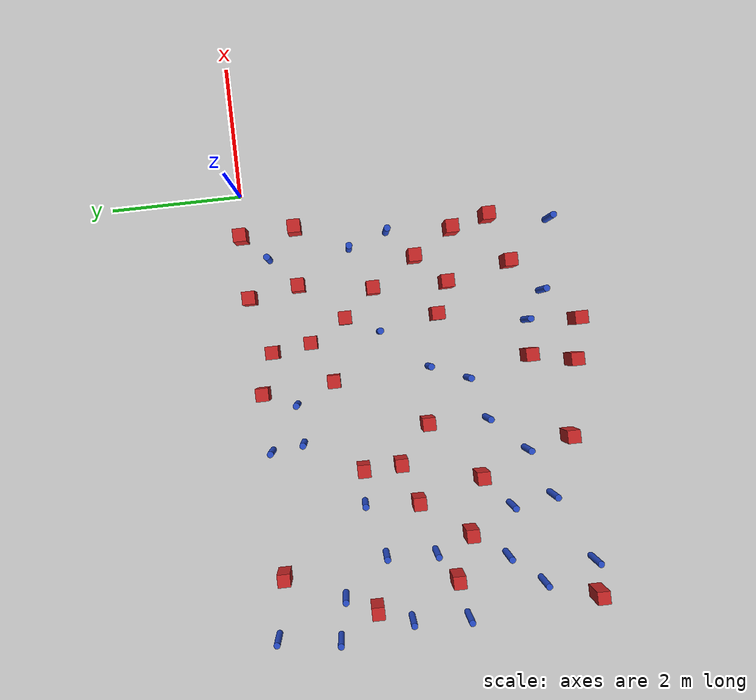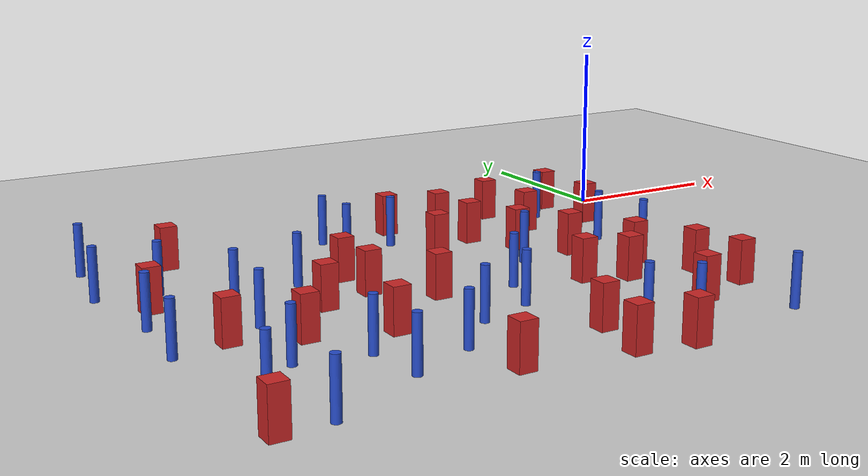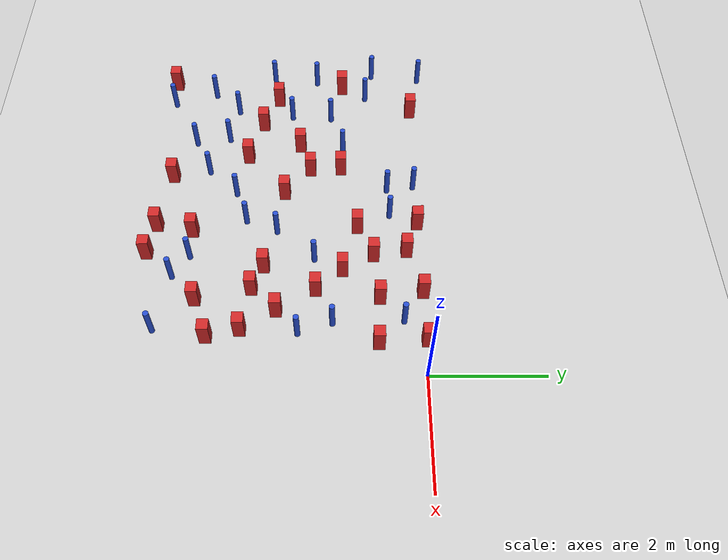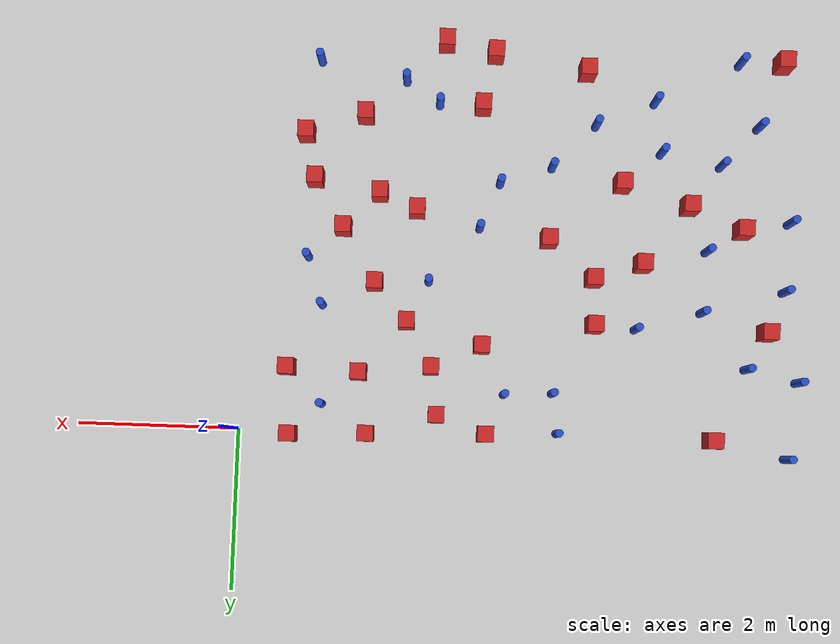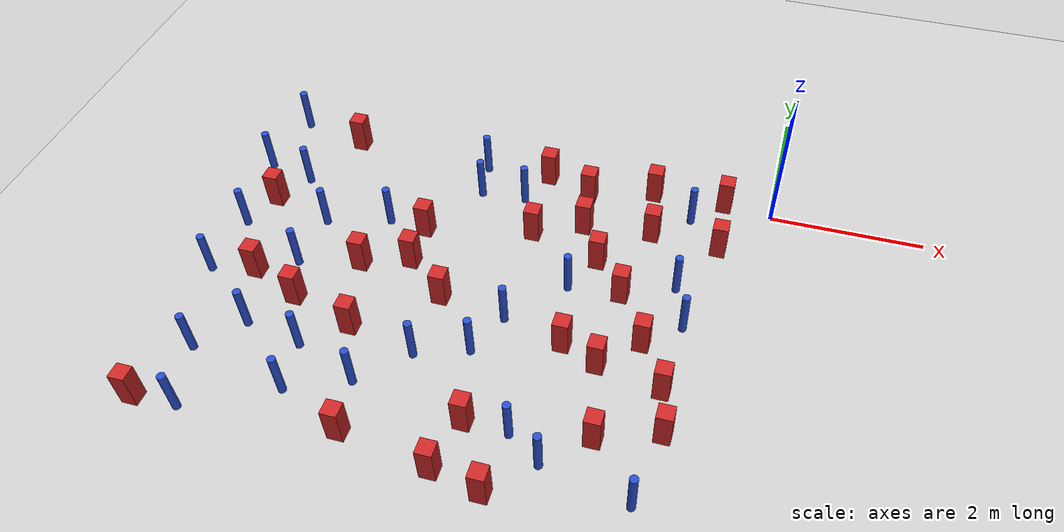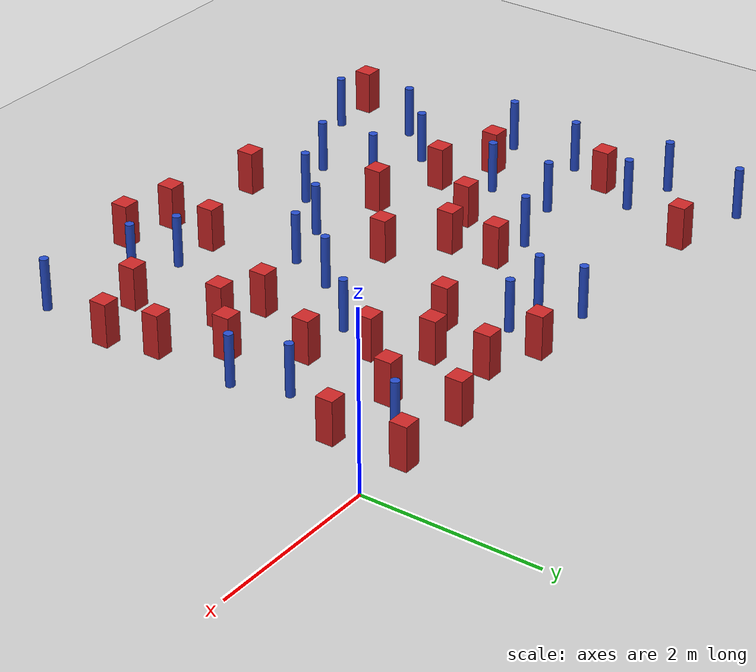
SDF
<sdf version="1.6">
 <world name="default">
  <model name="ground_plane">
   <static>1</static>
   <link name="link">
    <collision name="collision">
     <geometry><plane><normal>0 0 1</normal><size>100 100</size></plane></geometry>
     <surface><friction><ode><mu>100</mu><mu2>50</mu2></ode></friction></surface>
    </collision>
    <visual name="visual">
     <cast_shadows>0</cast_shadows>
     <geometry><plane><normal>0 0 1</normal><size>100 100</size></plane></geometry>
     <material>
      <ambient>1.0 1.0 1.0 1.0</ambient>
      <diffuse>0.8 0.8 0.8 1.0</diffuse>
      <specular>0.01 0.01 0.01 1.000000</specular>
     </material>
    </visual>
   </link>
  </model>
  <model name="pole_obstacle3">
   <static>true</static>
   <pose>-5.18515352489 -3.64382817312 2.88873142074e-08 -9.90536690245e-09 4.6021994898e-07 -1.20965994966e-07</pose>
   <link name="link">
    <pose>0 0 0.3 0 -0 0</pose>
    <inertial>
     <mass>1</mass>
     <inertia><ixx>0.145833</ixx><ixy>0</ixy><ixz>0</ixz><iyy>0.145833</iyy><iyz>0</iyz><izz>0.125</izz></inertia>
    </inertial>
    <collision name="collision">
     <geometry><cylinder><radius>0.05</radius><length>.6</length></cylinder></geometry>
    </collision>
    <visual name="visual">
     <geometry><cylinder><radius>0.05</radius><length>.6</length></cylinder></geometry>
     <material>
      <script><name>Gazebo/Blue</name><uri>file://media/materials/scripts/gazebo.material</uri></script>
     </material>
    </visual>
   </link>
  </model>
  <model name="square_post_obstacle5">
   <static>true</static>
   <pose>-6.22401054124 -2.6975874506 8.22691968438e-08 7.2212513382e-06 -7.54495500217e-07 2.29674213826e-05</pose>
   <link name="link">
    <pose>0 0 0.25 0 -0 0</pose>
    <inertial>
     <mass>100</mass>
     <inertia>
      <ixx>0.166667</ixx>
      <ixy>0</ixy>
      <ixz>0</ixz>
      <iyy>0.166667</iyy>
      <iyz>0</iyz>
      <izz>0.166667</izz>
     </inertia>
    </inertial>
    <collision name="collision"><geometry><box><size>.2 .2 .5</size></box></geometry></collision>
    <visual name="visual">
     <geometry><box><size>.2 .2 .5</size></box></geometry>
     <material>
      <script><name>Gazebo/Red</name><uri>file://media/materials/scripts/gazebo.material</uri></script>
     </material>
    </visual>
   </link>
  </model>
  <model name="pole_obstacle9">
   <static>true</static>
   <pose>-1.03282935127 -0.34773533734 2.88873142074e-08 -9.90536689939e-09 4.60219948987e-07 -1.20965994962e-07</pose>
   <link name="link">
    <pose>0 0 0.3 0 -0 0</pose>
    <inertial>
     <mass>1</mass>
     <inertia><ixx>0.145833</ixx><ixy>0</ixy><ixz>0</ixz><iyy>0.145833</iyy><iyz>0</iyz><izz>0.125</izz></inertia>
    </inertial>
    <collision name="collision">
     <geometry><cylinder><radius>0.05</radius><length>.6</length></cylinder></geometry>
    </collision>
    <visual name="visual">
     <geometry><cylinder><radius>0.05</radius><length>.6</length></cylinder></geometry>
     <material>
      <script><name>Gazebo/Blue</name><uri>file://media/materials/scripts/gazebo.material</uri></script>
     </material>
    </visual>
   </link>
  </model>
  <model name="pole_obstacle11">
   <static>true</static>
   <pose>-4.35559199001 -3.97032147339 2.88873142074e-08 -9.90536690067e-09 4.60219948984e-07 -1.20965994963e-07</pose>
   <link name="link">
    <pose>0 0 0.3 0 -0 0</pose>
    <inertial>
     <mass>1</mass>
     <inertia><ixx>0.145833</ixx><ixy>0</ixy><ixz>0</ixz><iyy>0.145833</iyy><iyz>0</iyz><izz>0.125</izz></inertia>
    </inertial>
    <collision name="collision">
     <geometry><cylinder><radius>0.05</radius><length>.6</length></cylinder></geometry>
    </collision>
    <visual name="visual">
     <geometry><cylinder><radius>0.05</radius><length>.6</length></cylinder></geometry>
     <material>
      <script><name>Gazebo/Blue</name><uri>file://media/materials/scripts/gazebo.material</uri></script>
     </material>
    </visual>
   </link>
  </model>
  <model name="pole_obstacle16">
   <static>true</static>
   <pose>-6.40002123706 -4.00811593487 2.88873142074e-08 -9.90536690819e-09 4.60219948966e-07 -1.20965994975e-07</pose>
   <link name="link">
    <pose>0 0 0.3 0 -0 0</pose>
    <inertial>
     <mass>1</mass>
     <inertia><ixx>0.145833</ixx><ixy>0</ixy><ixz>0</ixz><iyy>0.145833</iyy><iyz>0</iyz><izz>0.125</izz></inertia>
    </inertial>
    <collision name="collision">
     <geometry><cylinder><radius>0.05</radius><length>.6</length></cylinder></geometry>
    </collision>
    <visual name="visual">
     <geometry><cylinder><radius>0.05</radius><length>.6</length></cylinder></geometry>
     <material>
      <script><name>Gazebo/Blue</name><uri>file://media/materials/scripts/gazebo.material</uri></script>
     </material>
    </visual>
   </link>
  </model>
  <model name="pole_obstacle18">
   <static>true</static>
   <pose>-2.3167167053 -1.92145715834 2.88873142074e-08 -9.90536689395e-09 4.60219949e-07 -1.20965994953e-07</pose>
   <link name="link">
    <pose>0 0 0.3 0 -0 0</pose>
    <inertial>
     <mass>1</mass>
     <inertia><ixx>0.145833</ixx><ixy>0</ixy><ixz>0</ixz><iyy>0.145833</iyy><iyz>0</iyz><izz>0.125</izz></inertia>
    </inertial>
    <collision name="collision">
     <geometry><cylinder><radius>0.05</radius><length>.6</length></cylinder></geometry>
    </collision>
    <visual name="visual">
     <geometry><cylinder><radius>0.05</radius><length>.6</length></cylinder></geometry>
     <material>
      <script><name>Gazebo/Blue</name><uri>file://media/materials/scripts/gazebo.material</uri></script>
     </material>
    </visual>
   </link>
  </model>
  <model name="pole_obstacle21">
   <static>true</static>
   <pose>-3.17150857694 -3.19205339714 2.88873142074e-08 -9.90536690232e-09 4.6021994898e-07 -1.20965994968e-07</pose>
   <link name="link">
    <pose>0 0 0.3 0 -0 0</pose>
    <inertial>
     <mass>1</mass>
     <inertia><ixx>0.145833</ixx><ixy>0</ixy><ixz>0</ixz><iyy>0.145833</iyy><iyz>0</iyz><izz>0.125</izz></inertia>
    </inertial>
    <collision name="collision">
     <geometry><cylinder><radius>0.05</radius><length>.6</length></cylinder></geometry>
    </collision>
    <visual name="visual">
     <geometry><cylinder><radius>0.05</radius><length>.6</length></cylinder></geometry>
     <material>
      <script><name>Gazebo/Blue</name><uri>file://media/materials/scripts/gazebo.material</uri></script>
     </material>
    </visual>
   </link>
  </model>
  <model name="pole_obstacle32">
   <static>true</static>
   <pose>-6.94644170509 -0.814503226461 2.88873142074e-08 -9.90536689837e-09 4.60219948989e-07 -1.2096599496e-07</pose>
   <link name="link">
    <pose>0 0 0.3 0 -0 0</pose>
    <inertial>
     <mass>1</mass>
     <inertia><ixx>0.145833</ixx><ixy>0</ixy><ixz>0</ixz><iyy>0.145833</iyy><iyz>0</iyz><izz>0.125</izz></inertia>
    </inertial>
    <collision name="collision">
     <geometry><cylinder><radius>0.05</radius><length>.6</length></cylinder></geometry>
    </collision>
    <visual name="visual">
     <geometry><cylinder><radius>0.05</radius><length>.6</length></cylinder></geometry>
     <material>
      <script><name>Gazebo/Blue</name><uri>file://media/materials/scripts/gazebo.material</uri></script>
     </material>
    </visual>
   </link>
  </model>
  <model name="square_post_obstacle29">
   <static>true</static>
   <pose>-0.594315088327 -0.79215371829 8.22691968438e-08 7.2212513382e-06 -7.54495500217e-07 2.29674213826e-05</pose>
   <link name="link">
    <pose>0 0 0.25 0 -0 0</pose>
    <inertial>
     <mass>100</mass>
     <inertia>
      <ixx>0.166667</ixx>
      <ixy>0</ixy>
      <ixz>0</ixz>
      <iyy>0.166667</iyy>
      <iyz>0</iyz>
      <izz>0.166667</izz>
     </inertia>
    </inertial>
    <collision name="collision"><geometry><box><size>.2 .2 .5</size></box></geometry></collision>
    <visual name="visual">
     <geometry><box><size>.2 .2 .5</size></box></geometry>
     <material>
      <script><name>Gazebo/Red</name><uri>file://media/materials/scripts/gazebo.material</uri></script>
     </material>
    </visual>
   </link>
  </model>
  <model name="pole_obstacle50">
   <static>true</static>
   <pose>-0.994300283929 -1.58828671017 2.88873142074e-08 -9.90536689826e-09 4.6021994899e-07 -1.20965994961e-07</pose>
   <link name="link">
    <pose>0 0 0.3 0 -0 0</pose>
    <inertial>
     <mass>1</mass>
     <inertia><ixx>0.145833</ixx><ixy>0</ixy><ixz>0</ixz><iyy>0.145833</iyy><iyz>0</iyz><izz>0.125</izz></inertia>
    </inertial>
    <collision name="collision">
     <geometry><cylinder><radius>0.05</radius><length>.6</length></cylinder></geometry>
    </collision>
    <visual name="visual">
     <geometry><cylinder><radius>0.05</radius><length>.6</length></cylinder></geometry>
     <material>
      <script><name>Gazebo/Blue</name><uri>file://media/materials/scripts/gazebo.material</uri></script>
     </material>
    </visual>
   </link>
  </model>
  <model name="pole_obstacle51">
   <static>true</static>
   <pose>-0.870614898008 -4.68148994331 2.88873142074e-08 -9.90536689661e-09 4.60219948993e-07 -1.20965994957e-07</pose>
   <link name="link">
    <pose>0 0 0.3 0 -0 0</pose>
    <inertial>
     <mass>1</mass>
     <inertia><ixx>0.145833</ixx><ixy>0</ixy><ixz>0</ixz><iyy>0.145833</iyy><iyz>0</iyz><izz>0.125</izz></inertia>
    </inertial>
    <collision name="collision">
     <geometry><cylinder><radius>0.05</radius><length>.6</length></cylinder></geometry>
    </collision>
    <visual name="visual">
     <geometry><cylinder><radius>0.05</radius><length>.6</length></cylinder></geometry>
     <material>
      <script><name>Gazebo/Blue</name><uri>file://media/materials/scripts/gazebo.material</uri></script>
     </material>
    </visual>
   </link>
  </model>
  <model name="square_post_obstacle42">
   <static>true</static>
   <pose>-4.2222383066 -4.65015890185 8.22691968438e-08 7.2212513382e-06 -7.54495500217e-07 2.29674213826e-05</pose>
   <link name="link">
    <pose>0 0 0.25 0 -0 0</pose>
    <inertial>
     <mass>100</mass>
     <inertia>
      <ixx>0.166667</ixx>
      <ixy>0</ixy>
      <ixz>0</ixz>
      <iyy>0.166667</iyy>
      <iyz>0</iyz>
      <izz>0.166667</izz>
     </inertia>
    </inertial>
    <collision name="collision"><geometry><box><size>.2 .2 .5</size></box></geometry></collision>
    <visual name="visual">
     <geometry><box><size>.2 .2 .5</size></box></geometry>
     <material>
      <script><name>Gazebo/Red</name><uri>file://media/materials/scripts/gazebo.material</uri></script>
     </material>
    </visual>
   </link>
  </model>
  <model name="square_post_obstacle44">
   <static>true</static>
   <pose>-4.70172187479 -3.23253525386 8.22691968438e-08 7.2212513382e-06 -7.54495500217e-07 2.29674213826e-05</pose>
   <link name="link">
    <pose>0 0 0.25 0 -0 0</pose>
    <inertial>
     <mass>100</mass>
     <inertia>
      <ixx>0.166667</ixx>
      <ixy>0</ixy>
      <ixz>0</ixz>
      <iyy>0.166667</iyy>
      <iyz>0</iyz>
      <izz>0.166667</izz>
     </inertia>
    </inertial>
    <collision name="collision"><geometry><box><size>.2 .2 .5</size></box></geometry></collision>
    <visual name="visual">
     <geometry><box><size>.2 .2 .5</size></box></geometry>
     <material>
      <script><name>Gazebo/Red</name><uri>file://media/materials/scripts/gazebo.material</uri></script>
     </material>
    </visual>
   </link>
  </model>
  <model name="square_post_obstacle46">
   <static>true</static>
   <pose>-3.07957119736 -0.0397284315289 8.22691968438e-08 7.2212513382e-06 -7.54495500217e-07 2.29674213826e-05</pose>
   <link name="link">
    <pose>0 0 0.25 0 -0 0</pose>
    <inertial>
     <mass>100</mass>
     <inertia>
      <ixx>0.166667</ixx>
      <ixy>0</ixy>
      <ixz>0</ixz>
      <iyy>0.166667</iyy>
      <iyz>0</iyz>
      <izz>0.166667</izz>
     </inertia>
    </inertial>
    <collision name="collision"><geometry><box><size>.2 .2 .5</size></box></geometry></collision>
    <visual name="visual">
     <geometry><box><size>.2 .2 .5</size></box></geometry>
     <material>
      <script><name>Gazebo/Red</name><uri>file://media/materials/scripts/gazebo.material</uri></script>
     </material>
    </visual>
   </link>
  </model>
  <model name="square_post_obstacle47">
   <static>true</static>
   <pose>-4.39521470594 -1.44592770591 8.22691968438e-08 7.2212513382e-06 -7.54495500217e-07 2.29674213826e-05</pose>
   <link name="link">
    <pose>0 0 0.25 0 -0 0</pose>
    <inertial>
     <mass>100</mass>
     <inertia>
      <ixx>0.166667</ixx>
      <ixy>0</ixy>
      <ixz>0</ixz>
      <iyy>0.166667</iyy>
      <iyz>0</iyz>
      <izz>0.166667</izz>
     </inertia>
    </inertial>
    <collision name="collision"><geometry><box><size>.2 .2 .5</size></box></geometry></collision>
    <visual name="visual">
     <geometry><box><size>.2 .2 .5</size></box></geometry>
     <material>
      <script><name>Gazebo/Red</name><uri>file://media/materials/scripts/gazebo.material</uri></script>
     </material>
    </visual>
   </link>
  </model>
  <model name="pole_obstacle64">
   <static>true</static>
   <pose>-5.09159465394 -4.28745386833 2.88873142074e-08 -9.90536690842e-09 4.60219948965e-07 -1.20965994976e-07</pose>
   <link name="link">
    <pose>0 0 0.3 0 -0 0</pose>
    <inertial>
     <mass>1</mass>
     <inertia><ixx>0.145833</ixx><ixy>0</ixy><ixz>0</ixz><iyy>0.145833</iyy><iyz>0</iyz><izz>0.125</izz></inertia>
    </inertial>
    <collision name="collision">
     <geometry><cylinder><radius>0.05</radius><length>.6</length></cylinder></geometry>
    </collision>
    <visual name="visual">
     <geometry><cylinder><radius>0.05</radius><length>.6</length></cylinder></geometry>
     <material>
      <script><name>Gazebo/Blue</name><uri>file://media/materials/scripts/gazebo.material</uri></script>
     </material>
    </visual>
   </link>
  </model>
  <model name="square_post_obstacle57">
   <static>true</static>
   <pose>-1.45693480369 -4.00123189193 8.22691968438e-08 7.2212513382e-06 -7.54495500217e-07 2.29674213826e-05</pose>
   <link name="link">
    <pose>0 0 0.25 0 -0 0</pose>
    <inertial>
     <mass>100</mass>
     <inertia>
      <ixx>0.166667</ixx>
      <ixy>0</ixy>
      <ixz>0</ixz>
      <iyy>0.166667</iyy>
      <iyz>0</iyz>
      <izz>0.166667</izz>
     </inertia>
    </inertial>
    <collision name="collision"><geometry><box><size>.2 .2 .5</size></box></geometry></collision>
    <visual name="visual">
     <geometry><box><size>.2 .2 .5</size></box></geometry>
     <material>
      <script><name>Gazebo/Red</name><uri>file://media/materials/scripts/gazebo.material</uri></script>
     </material>
    </visual>
   </link>
  </model>
  <model name="square_post_obstacle62">
   <static>true</static>
   <pose>-2.92230717326 -4.1638118253 8.22691968438e-08 7.22125133819e-06 -7.54495500217e-07 2.29674213826e-05</pose>
   <link name="link">
    <pose>0 0 0.25 0 -0 0</pose>
    <inertial>
     <mass>100</mass>
     <inertia>
      <ixx>0.166667</ixx>
      <ixy>0</ixy>
      <ixz>0</ixz>
      <iyy>0.166667</iyy>
      <iyz>0</iyz>
      <izz>0.166667</izz>
     </inertia>
    </inertial>
    <collision name="collision"><geometry><box><size>.2 .2 .5</size></box></geometry></collision>
    <visual name="visual">
     <geometry><box><size>.2 .2 .5</size></box></geometry>
     <material>
      <script><name>Gazebo/Red</name><uri>file://media/materials/scripts/gazebo.material</uri></script>
     </material>
    </visual>
   </link>
  </model>
  <model name="pole_obstacle76">
   <static>true</static>
   <pose>-4.91369849959 -1.4111571617 2.88873142074e-08 -9.90536689445e-09 4.60219948999e-07 -1.20965994956e-07</pose>
   <link name="link">
    <pose>0 0 0.3 0 -0 0</pose>
    <inertial>
     <mass>1</mass>
     <inertia><ixx>0.145833</ixx><ixy>0</ixy><ixz>0</ixz><iyy>0.145833</iyy><iyz>0</iyz><izz>0.125</izz></inertia>
    </inertial>
    <collision name="collision">
     <geometry><cylinder><radius>0.05</radius><length>.6</length></cylinder></geometry>
    </collision>
    <visual name="visual">
     <geometry><cylinder><radius>0.05</radius><length>.6</length></cylinder></geometry>
     <material>
      <script><name>Gazebo/Blue</name><uri>file://media/materials/scripts/gazebo.material</uri></script>
     </material>
    </visual>
   </link>
  </model>
  <model name="square_post_obstacle65">
   <static>true</static>
   <pose>-0.856122786552 -3.17266468845 8.22691968438e-08 7.2212513382e-06 -7.54495500217e-07 2.29674213826e-05</pose>
   <link name="link">
    <pose>0 0 0.25 0 -0 0</pose>
    <inertial>
     <mass>100</mass>
     <inertia>
      <ixx>0.166667</ixx>
      <ixy>0</ixy>
      <ixz>0</ixz>
      <iyy>0.166667</iyy>
      <iyz>0</iyz>
      <izz>0.166667</izz>
     </inertia>
    </inertial>
    <collision name="collision"><geometry><box><size>.2 .2 .5</size></box></geometry></collision>
    <visual name="visual">
     <geometry><box><size>.2 .2 .5</size></box></geometry>
     <material>
      <script><name>Gazebo/Red</name><uri>file://media/materials/scripts/gazebo.material</uri></script>
     </material>
    </visual>
   </link>
  </model>
  <model name="pole_obstacle91">
   <static>true</static>
   <pose>-3.97176357553 -0.0779354568639 2.88873142074e-08 -9.90536689918e-09 4.60219948987e-07 -1.20965994962e-07</pose>
   <link name="link">
    <pose>0 0 0.3 0 -0 0</pose>
    <inertial>
     <mass>1</mass>
     <inertia><ixx>0.145833</ixx><ixy>0</ixy><ixz>0</ixz><iyy>0.145833</iyy><iyz>0</iyz><izz>0.125</izz></inertia>
    </inertial>
    <collision name="collision">
     <geometry><cylinder><radius>0.05</radius><length>.6</length></cylinder></geometry>
    </collision>
    <visual name="visual">
     <geometry><cylinder><radius>0.05</radius><length>.6</length></cylinder></geometry>
     <material>
      <script><name>Gazebo/Blue</name><uri>file://media/materials/scripts/gazebo.material</uri></script>
     </material>
    </visual>
   </link>
  </model>
  <model name="square_post_obstacle85">
   <static>true</static>
   <pose>-2.05816213819 -1.41168104123 8.22691968438e-08 7.2212513382e-06 -7.54495500217e-07 2.29674213826e-05</pose>
   <link name="link">
    <pose>0 0 0.25 0 -0 0</pose>
    <inertial>
     <mass>100</mass>
     <inertia>
      <ixx>0.166667</ixx>
      <ixy>0</ixy>
      <ixz>0</ixz>
      <iyy>0.166667</iyy>
      <iyz>0</iyz>
      <izz>0.166667</izz>
     </inertia>
    </inertial>
    <collision name="collision"><geometry><box><size>.2 .2 .5</size></box></geometry></collision>
    <visual name="visual">
     <geometry><box><size>.2 .2 .5</size></box></geometry>
     <material>
      <script><name>Gazebo/Red</name><uri>file://media/materials/scripts/gazebo.material</uri></script>
     </material>
    </visual>
   </link>
  </model>
  <model name="square_post_obstacle90">
   <static>true</static>
   <pose>-4.37082689462 -2.02491469138 8.22691968438e-08 7.22125133819e-06 -7.54495500217e-07 2.29674213826e-05</pose>
   <link name="link">
    <pose>0 0 0.25 0 -0 0</pose>
    <inertial>
     <mass>100</mass>
     <inertia>
      <ixx>0.166667</ixx>
      <ixy>0</ixy>
      <ixz>0</ixz>
      <iyy>0.166667</iyy>
      <iyz>0</iyz>
      <izz>0.166667</izz>
     </inertia>
    </inertial>
    <collision name="collision"><geometry><box><size>.2 .2 .5</size></box></geometry></collision>
    <visual name="visual">
     <geometry><box><size>.2 .2 .5</size></box></geometry>
     <material>
      <script><name>Gazebo/Red</name><uri>file://media/materials/scripts/gazebo.material</uri></script>
     </material>
    </visual>
   </link>
  </model>
  <model name="square_post_obstacle99">
   <static>true</static>
   <pose>-1.67147290732 -3.01757024687 8.22691968438e-08 7.2212513382e-06 -7.54495500217e-07 2.29674213826e-05</pose>
   <link name="link">
    <pose>0 0 0.25 0 -0 0</pose>
    <inertial>
     <mass>100</mass>
     <inertia>
      <ixx>0.166667</ixx>
      <ixy>0</ixy>
      <ixz>0</ixz>
      <iyy>0.166667</iyy>
      <iyz>0</iyz>
      <izz>0.166667</izz>
     </inertia>
    </inertial>
    <collision name="collision"><geometry><box><size>.2 .2 .5</size></box></geometry></collision>
    <visual name="visual">
     <geometry><box><size>.2 .2 .5</size></box></geometry>
     <material>
      <script><name>Gazebo/Red</name><uri>file://media/materials/scripts/gazebo.material</uri></script>
     </material>
    </visual>
   </link>
  </model>
  <model name="pole_obstacle108">
   <static>true</static>
   <pose>-5.93916247559 -3.50289343247 2.88873142074e-08 -9.90536690245e-09 4.6021994898e-07 -1.20965994966e-07</pose>
   <link name="link">
    <pose>0 0 0.3 0 -0 0</pose>
    <inertial>
     <mass>1</mass>
     <inertia><ixx>0.145833</ixx><ixy>0</ixy><ixz>0</ixz><iyy>0.145833</iyy><iyz>0</iyz><izz>0.125</izz></inertia>
    </inertial>
    <collision name="collision">
     <geometry><cylinder><radius>0.05</radius><length>.6</length></cylinder></geometry>
    </collision>
    <visual name="visual">
     <geometry><cylinder><radius>0.05</radius><length>.6</length></cylinder></geometry>
     <material>
      <script><name>Gazebo/Blue</name><uri>file://media/materials/scripts/gazebo.material</uri></script>
     </material>
    </visual>
   </link>
  </model>
  <model name="square_post_obstacle103">
   <static>true</static>
   <pose>-3.79790533564 -2.50050929023 8.22691968438e-08 7.2212513382e-06 -7.54495500217e-07 2.29674213826e-05</pose>
   <link name="link">
    <pose>0 0 0.25 0 -0 0</pose>
    <inertial>
     <mass>100</mass>
     <inertia>
      <ixx>0.166667</ixx>
      <ixy>0</ixy>
      <ixz>0</ixz>
      <iyy>0.166667</iyy>
      <iyz>0</iyz>
      <izz>0.166667</izz>
     </inertia>
    </inertial>
    <collision name="collision"><geometry><box><size>.2 .2 .5</size></box></geometry></collision>
    <visual name="visual">
     <geometry><box><size>.2 .2 .5</size></box></geometry>
     <material>
      <script><name>Gazebo/Red</name><uri>file://media/materials/scripts/gazebo.material</uri></script>
     </material>
    </visual>
   </link>
  </model>
  <model name="square_post_obstacle110">
   <static>true</static>
   <pose>-3.06213251518 -4.83573362155 8.22691968438e-08 7.2212513382e-06 -7.54495500217e-07 2.29674213826e-05</pose>
   <link name="link">
    <pose>0 0 0.25 0 -0 0</pose>
    <inertial>
     <mass>100</mass>
     <inertia>
      <ixx>0.166667</ixx>
      <ixy>0</ixy>
      <ixz>0</ixz>
      <iyy>0.166667</iyy>
      <iyz>0</iyz>
      <izz>0.166667</izz>
     </inertia>
    </inertial>
    <collision name="collision"><geometry><box><size>.2 .2 .5</size></box></geometry></collision>
    <visual name="visual">
     <geometry><box><size>.2 .2 .5</size></box></geometry>
     <material>
      <script><name>Gazebo/Red</name><uri>file://media/materials/scripts/gazebo.material</uri></script>
     </material>
    </visual>
   </link>
  </model>
  <model name="square_post_obstacle117">
   <static>true</static>
   <pose>-2.46401670014 -0.256958188213 8.22691968438e-08 7.2212513382e-06 -7.54495500217e-07 2.29674213826e-05</pose>
   <link name="link">
    <pose>0 0 0.25 0 -0 0</pose>
    <inertial>
     <mass>100</mass>
     <inertia>
      <ixx>0.166667</ixx>
      <ixy>0</ixy>
      <ixz>0</ixz>
      <iyy>0.166667</iyy>
      <iyz>0</iyz>
      <izz>0.166667</izz>
     </inertia>
    </inertial>
    <collision name="collision"><geometry><box><size>.2 .2 .5</size></box></geometry></collision>
    <visual name="visual">
     <geometry><box><size>.2 .2 .5</size></box></geometry>
     <material>
      <script><name>Gazebo/Red</name><uri>file://media/materials/scripts/gazebo.material</uri></script>
     </material>
    </visual>
   </link>
  </model>
  <model name="pole_obstacle126">
   <static>true</static>
   <pose>-3.89844140898 -0.575344460747 2.88873142074e-08 -9.90536690901e-09 4.60219948964e-07 -1.20965994979e-07</pose>
   <link name="link">
    <pose>0 0 0.3 0 -0 0</pose>
    <inertial>
     <mass>1</mass>
     <inertia><ixx>0.145833</ixx><ixy>0</ixy><ixz>0</ixz><iyy>0.145833</iyy><iyz>0</iyz><izz>0.125</izz></inertia>
    </inertial>
    <collision name="collision">
     <geometry><cylinder><radius>0.05</radius><length>.6</length></cylinder></geometry>
    </collision>
    <visual name="visual">
     <geometry><cylinder><radius>0.05</radius><length>.6</length></cylinder></geometry>
     <material>
      <script><name>Gazebo/Blue</name><uri>file://media/materials/scripts/gazebo.material</uri></script>
     </material>
    </visual>
   </link>
  </model>
  <model name="square_post_obstacle122">
   <static>true</static>
   <pose>-1.64499577523 -1.88528201262 8.22691968438e-08 7.2212513382e-06 -7.54495500217e-07 2.29674213826e-05</pose>
   <link name="link">
    <pose>0 0 0.25 0 -0 0</pose>
    <inertial>
     <mass>100</mass>
     <inertia>
      <ixx>0.166667</ixx>
      <ixy>0</ixy>
      <ixz>0</ixz>
      <iyy>0.166667</iyy>
      <iyz>0</iyz>
      <izz>0.166667</izz>
     </inertia>
    </inertial>
    <collision name="collision"><geometry><box><size>.2 .2 .5</size></box></geometry></collision>
    <visual name="visual">
     <geometry><box><size>.2 .2 .5</size></box></geometry>
     <material>
      <script><name>Gazebo/Red</name><uri>file://media/materials/scripts/gazebo.material</uri></script>
     </material>
    </visual>
   </link>
  </model>
  <model name="square_post_obstacle132">
   <static>true</static>
   <pose>-2.4436697802 -4.95982697289 8.22691968438e-08 7.2212513382e-06 -7.54495500217e-07 2.29674213826e-05</pose>
   <link name="link">
    <pose>0 0 0.25 0 -0 0</pose>
    <inertial>
     <mass>100</mass>
     <inertia>
      <ixx>0.166667</ixx>
      <ixy>0</ixy>
      <ixz>0</ixz>
      <iyy>0.166667</iyy>
      <iyz>0</iyz>
      <izz>0.166667</izz>
     </inertia>
    </inertial>
    <collision name="collision"><geometry><box><size>.2 .2 .5</size></box></geometry></collision>
    <visual name="visual">
     <geometry><box><size>.2 .2 .5</size></box></geometry>
     <material>
      <script><name>Gazebo/Red</name><uri>file://media/materials/scripts/gazebo.material</uri></script>
     </material>
    </visual>
   </link>
  </model>
  <model name="pole_obstacle136">
   <static>true</static>
   <pose>-6.82410113793 0.139185077036 2.88873142074e-08 -9.90536689234e-09 4.60219949004e-07 -1.20965994953e-07</pose>
   <link name="link">
    <pose>0 0 0.3 0 -0 0</pose>
    <inertial>
     <mass>1</mass>
     <inertia><ixx>0.145833</ixx><ixy>0</ixy><ixz>0</ixz><iyy>0.145833</iyy><iyz>0</iyz><izz>0.125</izz></inertia>
    </inertial>
    <collision name="collision">
     <geometry><cylinder><radius>0.05</radius><length>.6</length></cylinder></geometry>
    </collision>
    <visual name="visual">
     <geometry><cylinder><radius>0.05</radius><length>.6</length></cylinder></geometry>
     <material>
      <script><name>Gazebo/Blue</name><uri>file://media/materials/scripts/gazebo.material</uri></script>
     </material>
    </visual>
   </link>
  </model>
  <model name="pole_obstacle141">
   <static>true</static>
   <pose>-6.30423525023 -0.957620556944 2.88873142074e-08 -9.90536689779e-09 4.60219948991e-07 -1.20965994959e-07</pose>
   <link name="link">
    <pose>0 0 0.3 0 -0 0</pose>
    <inertial>
     <mass>1</mass>
     <inertia><ixx>0.145833</ixx><ixy>0</ixy><ixz>0</ixz><iyy>0.145833</iyy><iyz>0</iyz><izz>0.125</izz></inertia>
    </inertial>
    <collision name="collision">
     <geometry><cylinder><radius>0.05</radius><length>.6</length></cylinder></geometry>
    </collision>
    <visual name="visual">
     <geometry><cylinder><radius>0.05</radius><length>.6</length></cylinder></geometry>
     <material>
      <script><name>Gazebo/Blue</name><uri>file://media/materials/scripts/gazebo.material</uri></script>
     </material>
    </visual>
   </link>
  </model>
  <model name="square_post_obstacle140">
   <static>true</static>
   <pose>-4.98029489721 -2.2323148453 8.22691968438e-08 7.2212513382e-06 -7.54495500217e-07 2.29674213826e-05</pose>
   <link name="link">
    <pose>0 0 0.25 0 -0 0</pose>
    <inertial>
     <mass>100</mass>
     <inertia>
      <ixx>0.166667</ixx>
      <ixy>0</ixy>
      <ixz>0</ixz>
      <iyy>0.166667</iyy>
      <iyz>0</iyz>
      <izz>0.166667</izz>
     </inertia>
    </inertial>
    <collision name="collision"><geometry><box><size>.2 .2 .5</size></box></geometry></collision>
    <visual name="visual">
     <geometry><box><size>.2 .2 .5</size></box></geometry>
     <material>
      <script><name>Gazebo/Red</name><uri>file://media/materials/scripts/gazebo.material</uri></script>
     </material>
    </visual>
   </link>
  </model>
  <model name="pole_obstacle146">
   <static>true</static>
   <pose>-6.76156513708 -1.94022144803 2.88873142074e-08 -9.90536689445e-09 4.60219948999e-07 -1.20965994956e-07</pose>
   <link name="link">
    <pose>0 0 0.3 0 -0 0</pose>
    <inertial>
     <mass>1</mass>
     <inertia><ixx>0.145833</ixx><ixy>0</ixy><ixz>0</ixz><iyy>0.145833</iyy><iyz>0</iyz><izz>0.125</izz></inertia>
    </inertial>
    <collision name="collision">
     <geometry><cylinder><radius>0.05</radius><length>.6</length></cylinder></geometry>
    </collision>
    <visual name="visual">
     <geometry><cylinder><radius>0.05</radius><length>.6</length></cylinder></geometry>
     <material>
      <script><name>Gazebo/Blue</name><uri>file://media/materials/scripts/gazebo.material</uri></script>
     </material>
    </visual>
   </link>
  </model>
  <model name="pole_obstacle150">
   <static>true</static>
   <pose>-2.93385678526 -2.61761920821 2.88873142074e-08 -9.90536690232e-09 4.6021994898e-07 -1.20965994968e-07</pose>
   <link name="link">
    <pose>0 0 0.3 0 -0 0</pose>
    <inertial>
     <mass>1</mass>
     <inertia><ixx>0.145833</ixx><ixy>0</ixy><ixz>0</ixz><iyy>0.145833</iyy><iyz>0</iyz><izz>0.125</izz></inertia>
    </inertial>
    <collision name="collision">
     <geometry><cylinder><radius>0.05</radius><length>.6</length></cylinder></geometry>
    </collision>
    <visual name="visual">
     <geometry><cylinder><radius>0.05</radius><length>.6</length></cylinder></geometry>
     <material>
      <script><name>Gazebo/Blue</name><uri>file://media/materials/scripts/gazebo.material</uri></script>
     </material>
    </visual>
   </link>
  </model>
  <model name="pole_obstacle152">
   <static>true</static>
   <pose>-1.95457907053 -4.46025529377 2.88873142074e-08 -9.90536689721e-09 4.60219948992e-07 -1.20965994958e-07</pose>
   <link name="link">
    <pose>0 0 0.3 0 -0 0</pose>
    <inertial>
     <mass>1</mass>
     <inertia><ixx>0.145833</ixx><ixy>0</ixy><ixz>0</ixz><iyy>0.145833</iyy><iyz>0</iyz><izz>0.125</izz></inertia>
    </inertial>
    <collision name="collision">
     <geometry><cylinder><radius>0.05</radius><length>.6</length></cylinder></geometry>
    </collision>
    <visual name="visual">
     <geometry><cylinder><radius>0.05</radius><length>.6</length></cylinder></geometry>
     <material>
      <script><name>Gazebo/Blue</name><uri>file://media/materials/scripts/gazebo.material</uri></script>
     </material>
    </visual>
   </link>
  </model>
  <model name="square_post_obstacle145">
   <static>true</static>
   <pose>-6.55330520127 -1.42313553769 8.22691968438e-08 7.2212513382e-06 -7.54495500217e-07 2.29674213826e-05</pose>
   <link name="link">
    <pose>0 0 0.25 0 -0 0</pose>
    <inertial>
     <mass>100</mass>
     <inertia>
      <ixx>0.166667</ixx>
      <ixy>0</ixy>
      <ixz>0</ixz>
      <iyy>0.166667</iyy>
      <iyz>0</iyz>
      <izz>0.166667</izz>
     </inertia>
    </inertial>
    <collision name="collision"><geometry><box><size>.2 .2 .5</size></box></geometry></collision>
    <visual name="visual">
     <geometry><box><size>.2 .2 .5</size></box></geometry>
     <material>
      <script><name>Gazebo/Red</name><uri>file://media/materials/scripts/gazebo.material</uri></script>
     </material>
    </visual>
   </link>
  </model>
  <model name="square_post_obstacle149">
   <static>true</static>
   <pose>-1.60219963474 0.0029971420331 8.22691968438e-08 7.2212513382e-06 -7.54495500217e-07 2.29674213826e-05</pose>
   <link name="link">
    <pose>0 0 0.25 0 -0 0</pose>
    <inertial>
     <mass>100</mass>
     <inertia>
      <ixx>0.166667</ixx>
      <ixy>0</ixy>
      <ixz>0</ixz>
      <iyy>0.166667</iyy>
      <iyz>0</iyz>
      <izz>0.166667</izz>
     </inertia>
    </inertial>
    <collision name="collision"><geometry><box><size>.2 .2 .5</size></box></geometry></collision>
    <visual name="visual">
     <geometry><box><size>.2 .2 .5</size></box></geometry>
     <material>
      <script><name>Gazebo/Red</name><uri>file://media/materials/scripts/gazebo.material</uri></script>
     </material>
    </visual>
   </link>
  </model>
  <model name="pole_obstacle168">
   <static>true</static>
   <pose>-5.73507624228 -1.6476617976 2.88873142074e-08 -9.90536689445e-09 4.60219948999e-07 -1.20965994956e-07</pose>
   <link name="link">
    <pose>0 0 0.3 0 -0 0</pose>
    <inertial>
     <mass>1</mass>
     <inertia><ixx>0.145833</ixx><ixy>0</ixy><ixz>0</ixz><iyy>0.145833</iyy><iyz>0</iyz><izz>0.125</izz></inertia>
    </inertial>
    <collision name="collision">
     <geometry><cylinder><radius>0.05</radius><length>.6</length></cylinder></geometry>
    </collision>
    <visual name="visual">
     <geometry><cylinder><radius>0.05</radius><length>.6</length></cylinder></geometry>
     <material>
      <script><name>Gazebo/Blue</name><uri>file://media/materials/scripts/gazebo.material</uri></script>
     </material>
    </visual>
   </link>
  </model>
  <model name="square_post_obstacle167">
   <static>true</static>
   <pose>-3.00056266865 -1.14003715534 8.22691968438e-08 7.2212513382e-06 -7.54495500217e-07 2.29674213826e-05</pose>
   <link name="link">
    <pose>0 0 0.25 0 -0 0</pose>
    <inertial>
     <mass>100</mass>
     <inertia>
      <ixx>0.166667</ixx>
      <ixy>0</ixy>
      <ixz>0</ixz>
      <iyy>0.166667</iyy>
      <iyz>0</iyz>
      <izz>0.166667</izz>
     </inertia>
    </inertial>
    <collision name="collision"><geometry><box><size>.2 .2 .5</size></box></geometry></collision>
    <visual name="visual">
     <geometry><box><size>.2 .2 .5</size></box></geometry>
     <material>
      <script><name>Gazebo/Red</name><uri>file://media/materials/scripts/gazebo.material</uri></script>
     </material>
    </visual>
   </link>
  </model>
  <model name="pole_obstacle169">
   <static>true</static>
   <pose>-3.29714133585 -0.540470064256 2.88873142074e-08 -9.90536689248e-09 4.60219949003e-07 -1.20965994953e-07</pose>
   <link name="link">
    <pose>0 0 0.3 0 -0 0</pose>
    <inertial>
     <mass>1</mass>
     <inertia><ixx>0.145833</ixx><ixy>0</ixy><ixz>0</ixz><iyy>0.145833</iyy><iyz>0</iyz><izz>0.125</izz></inertia>
    </inertial>
    <collision name="collision">
     <geometry><cylinder><radius>0.05</radius><length>.6</length></cylinder></geometry>
    </collision>
    <visual name="visual">
     <geometry><cylinder><radius>0.05</radius><length>.6</length></cylinder></geometry>
     <material>
      <script><name>Gazebo/Blue</name><uri>file://media/materials/scripts/gazebo.material</uri></script>
     </material>
    </visual>
   </link>
  </model>
  <model name="pole_obstacle174">
   <static>true</static>
   <pose>-5.78247465364 -2.41753725007 2.88873142074e-08 -9.90536690245e-09 4.6021994898e-07 -1.20965994966e-07</pose>
   <link name="link">
    <pose>0 0 0.3 0 -0 0</pose>
    <inertial>
     <mass>1</mass>
     <inertia><ixx>0.145833</ixx><ixy>0</ixy><ixz>0</ixz><iyy>0.145833</iyy><iyz>0</iyz><izz>0.125</izz></inertia>
    </inertial>
    <collision name="collision">
     <geometry><cylinder><radius>0.05</radius><length>.6</length></cylinder></geometry>
    </collision>
    <visual name="visual">
     <geometry><cylinder><radius>0.05</radius><length>.6</length></cylinder></geometry>
     <material>
      <script><name>Gazebo/Blue</name><uri>file://media/materials/scripts/gazebo.material</uri></script>
     </material>
    </visual>
   </link>
  </model>
  <model name="pole_obstacle175">
   <static>true</static>
   <pose>-3.81884420262 -3.41685720376 2.88873142074e-08 -9.90536690232e-09 4.6021994898e-07 -1.20965994968e-07</pose>
   <link name="link">
    <pose>0 0 0.3 0 -0 0</pose>
    <inertial>
     <mass>1</mass>
     <inertia><ixx>0.145833</ixx><ixy>0</ixy><ixz>0</ixz><iyy>0.145833</iyy><iyz>0</iyz><izz>0.125</izz></inertia>
    </inertial>
    <collision name="collision">
     <geometry><cylinder><radius>0.05</radius><length>.6</length></cylinder></geometry>
    </collision>
    <visual name="visual">
     <geometry><cylinder><radius>0.05</radius><length>.6</length></cylinder></geometry>
     <material>
      <script><name>Gazebo/Blue</name><uri>file://media/materials/scripts/gazebo.material</uri></script>
     </material>
    </visual>
   </link>
  </model>
  <model name="pole_obstacle181">
   <static>true</static>
   <pose>-6.14994584356 -4.8166419265 2.88873142074e-08 -9.90536690842e-09 4.60219948965e-07 -1.20965994976e-07</pose>
   <link name="link">
    <pose>0 0 0.3 0 -0 0</pose>
    <inertial>
     <mass>1</mass>
     <inertia><ixx>0.145833</ixx><ixy>0</ixy><ixz>0</ixz><iyy>0.145833</iyy><iyz>0</iyz><izz>0.125</izz></inertia>
    </inertial>
    <collision name="collision">
     <geometry><cylinder><radius>0.05</radius><length>.6</length></cylinder></geometry>
    </collision>
    <visual name="visual">
     <geometry><cylinder><radius>0.05</radius><length>.6</length></cylinder></geometry>
     <material>
      <script><name>Gazebo/Blue</name><uri>file://media/materials/scripts/gazebo.material</uri></script>
     </material>
    </visual>
   </link>
  </model>
  <model name="square_post_obstacle187">
   <static>true</static>
   <pose>-2.14195811722 -2.82138331485 8.22691968438e-08 7.2212513382e-06 -7.54495500217e-07 2.29674213826e-05</pose>
   <link name="link">
    <pose>0 0 0.25 0 -0 0</pose>
    <inertial>
     <mass>100</mass>
     <inertia>
      <ixx>0.166667</ixx>
      <ixy>0</ixy>
      <ixz>0</ixz>
      <iyy>0.166667</iyy>
      <iyz>0</iyz>
      <izz>0.166667</izz>
     </inertia>
    </inertial>
    <collision name="collision"><geometry><box><size>.2 .2 .5</size></box></geometry></collision>
    <visual name="visual">
     <geometry><box><size>.2 .2 .5</size></box></geometry>
     <material>
      <script><name>Gazebo/Red</name><uri>file://media/materials/scripts/gazebo.material</uri></script>
     </material>
    </visual>
   </link>
  </model>
  <model name="pole_obstacle190">
   <static>true</static>
   <pose>-6.81286059717 -2.80762774297 2.88873142074e-08 -9.90536690245e-09 4.6021994898e-07 -1.20965994966e-07</pose>
   <link name="link">
    <pose>0 0 0.3 0 -0 0</pose>
    <inertial>
     <mass>1</mass>
     <inertia><ixx>0.145833</ixx><ixy>0</ixy><ixz>0</ixz><iyy>0.145833</iyy><iyz>0</iyz><izz>0.125</izz></inertia>
    </inertial>
    <collision name="collision">
     <geometry><cylinder><radius>0.05</radius><length>.6</length></cylinder></geometry>
    </collision>
    <visual name="visual">
     <geometry><cylinder><radius>0.05</radius><length>.6</length></cylinder></geometry>
     <material>
      <script><name>Gazebo/Blue</name><uri>file://media/materials/scripts/gazebo.material</uri></script>
     </material>
    </visual>
   </link>
  </model>
  <model name="square_post_obstacle198">
   <static>true</static>
   <pose>-6.6902069276 -4.82977084998 8.22691968438e-08 7.2212513382e-06 -7.54495500217e-07 2.29674213826e-05</pose>
   <link name="link">
    <pose>0 0 0.25 0 -0 0</pose>
    <inertial>
     <mass>100</mass>
     <inertia>
      <ixx>0.166667</ixx>
      <ixy>0</ixy>
      <ixz>0</ixz>
      <iyy>0.166667</iyy>
      <iyz>0</iyz>
      <izz>0.166667</izz>
     </inertia>
    </inertial>
    <collision name="collision"><geometry><box><size>.2 .2 .5</size></box></geometry></collision>
    <visual name="visual">
     <geometry><box><size>.2 .2 .5</size></box></geometry>
     <material>
      <script><name>Gazebo/Red</name><uri>file://media/materials/scripts/gazebo.material</uri></script>
     </material>
    </visual>
   </link>
  </model>
  <model name="square_post_obstacle199">
   <static>true</static>
   <pose>-0.72188324053 -3.74365956527 8.22691968438e-08 7.2212513382e-06 -7.54495500217e-07 2.29674213826e-05</pose>
   <link name="link">
    <pose>0 0 0.25 0 -0 0</pose>
    <inertial>
     <mass>100</mass>
     <inertia>
      <ixx>0.166667</ixx>
      <ixy>0</ixy>
      <ixz>0</ixz>
      <iyy>0.166667</iyy>
      <iyz>0</iyz>
      <izz>0.166667</izz>
     </inertia>
    </inertial>
    <collision name="collision"><geometry><box><size>.2 .2 .5</size></box></geometry></collision>
    <visual name="visual">
     <geometry><box><size>.2 .2 .5</size></box></geometry>
     <material>
      <script><name>Gazebo/Red</name><uri>file://media/materials/scripts/gazebo.material</uri></script>
     </material>
    </visual>
   </link>
  </model>
  <model name="pole_obstacle191">
   <static>true</static>
   <pose>-2.38182801779 -4.17538785768 2.88873142074e-08 -9.90536689859e-09 4.60219948989e-07 -1.20965994961e-07</pose>
   <link name="link">
    <pose>0 0 0.3 0 -0 0</pose>
    <inertial>
     <mass>1</mass>
     <inertia><ixx>0.145833</ixx><ixy>0</ixy><ixz>0</ixz><iyy>0.145833</iyy><iyz>0</iyz><izz>0.125</izz></inertia>
    </inertial>
    <collision name="collision">
     <geometry><cylinder><radius>0.05</radius><length>.6</length></cylinder></geometry>
    </collision>
    <visual name="visual">
     <geometry><cylinder><radius>0.05</radius><length>.6</length></cylinder></geometry>
     <material>
      <script><name>Gazebo/Blue</name><uri>file://media/materials/scripts/gazebo.material</uri></script>
     </material>
    </visual>
   </link>
  </model>
  <model name="square_post_obstacle204">
   <static>true</static>
   <pose>-5.54895507211 -2.9764251045 8.22691968438e-08 7.2212513382e-06 -7.54495500217e-07 2.29674213826e-05</pose>
   <link name="link">
    <pose>0 0 0.25 0 -0 0</pose>
    <inertial>
     <mass>100</mass>
     <inertia>
      <ixx>0.166667</ixx>
      <ixy>0</ixy>
      <ixz>0</ixz>
      <iyy>0.166667</iyy>
      <iyz>0</iyz>
      <izz>0.166667</izz>
     </inertia>
    </inertial>
    <collision name="collision"><geometry><box><size>.2 .2 .5</size></box></geometry></collision>
    <visual name="visual">
     <geometry><box><size>.2 .2 .5</size></box></geometry>
     <material>
      <script><name>Gazebo/Red</name><uri>file://media/materials/scripts/gazebo.material</uri></script>
     </material>
    </visual>
   </link>
  </model>
  <model name="pole_obstacle198">
   <static>true</static>
   <pose>-0.797310101073 -2.18550087736 2.88873142074e-08 -9.90536689636e-09 4.60219948994e-07 -1.20965994958e-07</pose>
   <link name="link">
    <pose>0 0 0.3 0 -0 0</pose>
    <inertial>
     <mass>1</mass>
     <inertia><ixx>0.145833</ixx><ixy>0</ixy><ixz>0</ixz><iyy>0.145833</iyy><iyz>0</iyz><izz>0.125</izz></inertia>
    </inertial>
    <collision name="collision">
     <geometry><cylinder><radius>0.05</radius><length>.6</length></cylinder></geometry>
    </collision>
    <visual name="visual">
     <geometry><cylinder><radius>0.05</radius><length>.6</length></cylinder></geometry>
     <material>
      <script><name>Gazebo/Blue</name><uri>file://media/materials/scripts/gazebo.material</uri></script>
     </material>
    </visual>
   </link>
  </model>
  <model name="square_post_obstacle216">
   <static>true</static>
   <pose>-1.48507996738 -0.755606035341 8.22691968438e-08 7.2212513382e-06 -7.54495500217e-07 2.29674213826e-05</pose>
   <link name="link">
    <pose>0 0 0.25 0 -0 0</pose>
    <inertial>
     <mass>100</mass>
     <inertia>
      <ixx>0.166667</ixx>
      <ixy>0</ixy>
      <ixz>0</ixz>
      <iyy>0.166667</iyy>
      <iyz>0</iyz>
      <izz>0.166667</izz>
     </inertia>
    </inertial>
    <collision name="collision"><geometry><box><size>.2 .2 .5</size></box></geometry></collision>
    <visual name="visual">
     <geometry><box><size>.2 .2 .5</size></box></geometry>
     <material>
      <script><name>Gazebo/Red</name><uri>file://media/materials/scripts/gazebo.material</uri></script>
     </material>
    </visual>
   </link>
  </model>
  <model name="square_post_obstacle217">
   <static>true</static>
   <pose>-2.38012996738 -0.852880035341 8.22691968438e-08 7.2212513382e-06 -7.54495500217e-07 2.29674213826e-05</pose>
   <link name="link">
    <pose>0 0 0.25 0 -0 0</pose>
    <inertial>
     <mass>100</mass>
     <inertia>
      <ixx>0.166667</ixx>
      <ixy>0</ixy>
      <ixz>0</ixz>
      <iyy>0.166667</iyy>
      <iyz>0</iyz>
      <izz>0.166667</izz>
     </inertia>
    </inertial>
    <collision name="collision"><geometry><box><size>.2 .2 .5</size></box></geometry></collision>
    <visual name="visual">
     <geometry><box><size>.2 .2 .5</size></box></geometry>
     <material>
      <script><name>Gazebo/Red</name><uri>file://media/materials/scripts/gazebo.material</uri></script>
     </material>
    </visual>
   </link>
  </model>
  <model name="square_post_obstacle221">
   <static>true</static>
   <pose>-1.22741996738 -2.56667003534 8.22691968438e-08 7.2212513382e-06 -7.54495500217e-07 2.29674213826e-05</pose>
   <link name="link">
    <pose>0 0 0.25 0 -0 0</pose>
    <inertial>
     <mass>100</mass>
     <inertia>
      <ixx>0.166667</ixx>
      <ixy>0</ixy>
      <ixz>0</ixz>
      <iyy>0.166667</iyy>
      <iyz>0</iyz>
      <izz>0.166667</izz>
     </inertia>
    </inertial>
    <collision name="collision"><geometry><box><size>.2 .2 .5</size></box></geometry></collision>
    <visual name="visual">
     <geometry><box><size>.2 .2 .5</size></box></geometry>
     <material>
      <script><name>Gazebo/Red</name><uri>file://media/materials/scripts/gazebo.material</uri></script>
     </material>
    </visual>
   </link>
  </model>
  <model name="square_post_obstacle231">
   <static>true</static>
   <pose>-0.643594967378 0.0358859646594 8.22691968438e-08 7.2212513382e-06 -7.54495500217e-07 2.29674213826e-05</pose>
   <link name="link">
    <pose>0 0 0.25 0 -0 0</pose>
    <inertial>
     <mass>100</mass>
     <inertia>
      <ixx>0.166667</ixx>
      <ixy>0</ixy>
      <ixz>0</ixz>
      <iyy>0.166667</iyy>
      <iyz>0</iyz>
      <izz>0.166667</izz>
     </inertia>
    </inertial>
    <collision name="collision"><geometry><box><size>.2 .2 .5</size></box></geometry></collision>
    <visual name="visual">
     <geometry><box><size>.2 .2 .5</size></box></geometry>
     <material>
      <script><name>Gazebo/Red</name><uri>file://media/materials/scripts/gazebo.material</uri></script>
     </material>
    </visual>
   </link>
  </model>
  <model name="square_post_obstacle233">
   <static>true</static>
   <pose>-5.89993996738 -0.0574590353406 8.22691968438e-08 7.2212513382e-06 -7.54495500217e-07 2.29674213826e-05</pose>
   <link name="link">
    <pose>0 0 0.25 0 -0 0</pose>
    <inertial>
     <mass>100</mass>
     <inertia>
      <ixx>0.166667</ixx>
      <ixy>0</ixy>
      <ixz>0</ixz>
      <iyy>0.166667</iyy>
      <iyz>0</iyz>
      <izz>0.166667</izz>
     </inertia>
    </inertial>
    <collision name="collision"><geometry><box><size>.2 .2 .5</size></box></geometry></collision>
    <visual name="visual">
     <geometry><box><size>.2 .2 .5</size></box></geometry>
     <material>
      <script><name>Gazebo/Red</name><uri>file://media/materials/scripts/gazebo.material</uri></script>
     </material>
    </visual>
   </link>
  </model>
 </world>
</sdf>
